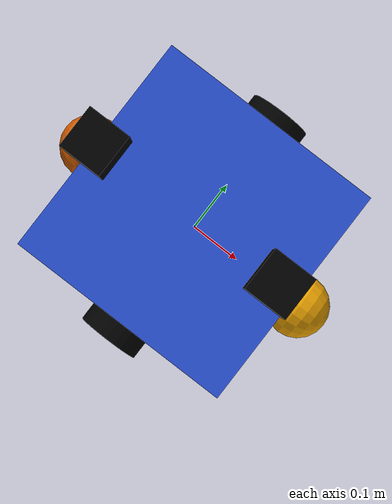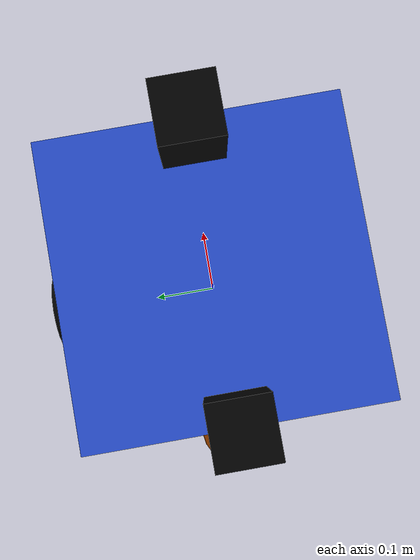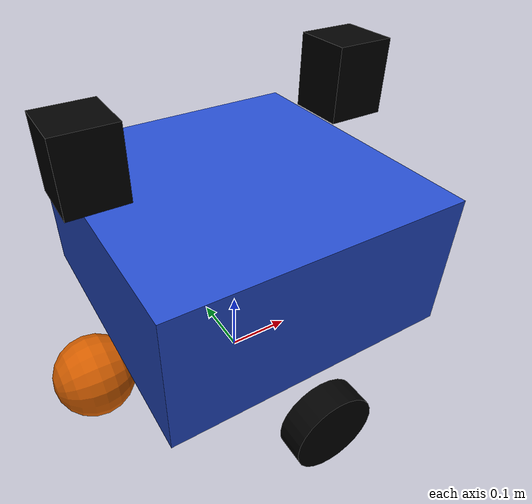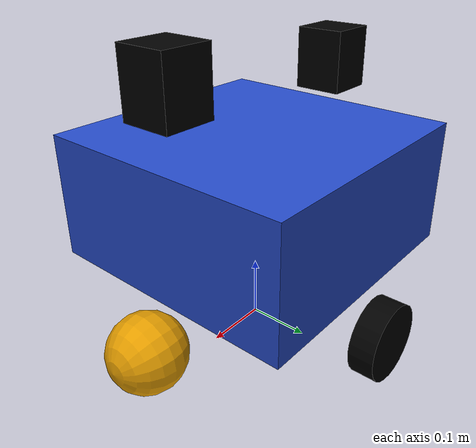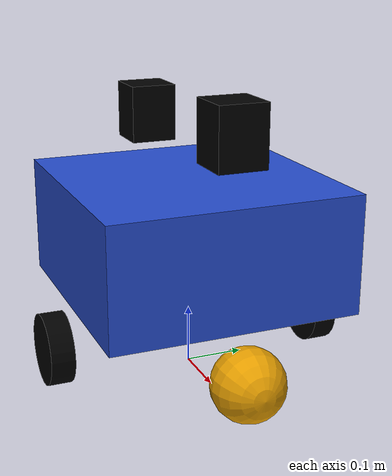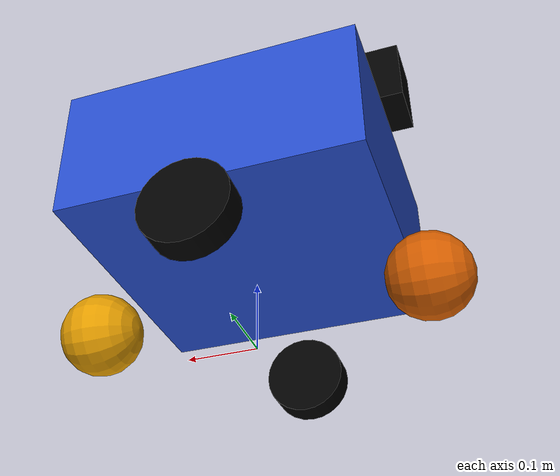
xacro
<?xml version="1.0"?>
<robot name="justina_base" xmlns:xacro="http://www.ros.org/wiki/xacro">
  <xacro:include filename="$(find justina_description)/urdf/justina_base.gazebo"/>

  <xacro:property name="base_width" value="0.42"/>
  <xacro:property name="base_depth" value="0.42"/>
  <xacro:property name="base_height" value="0.2"/>
  <xacro:property name="base_mass" value="30.0"/>
  <xacro:property name="wheel_radius" value="0.06"/>
  <xacro:property name="wheel_width" value="0.04"/>
  <xacro:property name="wheel_mass" value="30.0"/>
  <xacro:property name="PI_2" value="1.570796327"/>
  <xacro:property name="PI" value="3.14159265359"/>

  <!-- BASE LINKS AND JOINTS -->
  <link name="base_link">
    <visual>
      <origin xyz="0 0 0.235" rpy="0 0 0"/>
      <geometry> <box size="${base_width} ${base_depth} ${base_height}"/></geometry>
      <material name="blue"/>
    </visual>
    <collision>
      <origin xyz="0 0 0.235" rpy="0 0 0"/>
      <geometry> <box size="${base_width} ${base_depth} ${base_height}"/></geometry>
    </collision>
    <inertial>
      <origin xyz="0 0 0.235" rpy="0 0 0"/>
      <mass value="50.00"/>
      <xacro:box_inertia m="${base_mass}" x="${base_depth}" y="${base_width}" z="${base_height}"/>
    </inertial>
  </link>

  <joint name="wheel_left_connect" type="continuous">
    <origin xyz="0 0.24 0.065" rpy="-${PI_2} 0 0"/>
    <parent link="base_link"/>
    <child link="wheel_left"/>
    <axis xyz="0.0 0 1.0"/>
    <limit effort="11.067" velocity="20.8"/>
    <dynamics damping="1.0"/>
  </joint>

  <link name="wheel_left">
    <visual>
      <origin xyz="0 0 0" rpy="0 0 0"/>
      <geometry><cylinder length="${wheel_width}" radius="${wheel_radius}"/></geometry>
      <material name="gray"><color rgba="0 0 0 1" /></material>
    </visual>
    <collision>
      <origin xyz="0 0 0" rpy="0 0 0"/>
      <geometry><cylinder length="${wheel_width}" radius="${wheel_radius}"/></geometry>
    </collision>
    <inertial>
      <origin xyz="0 0 0"/>
      <mass value="0.2"/>
      <xacro:cylinder_inertia m="${wheel_mass}" r="${wheel_radius}" h="${wheel_width}"/>
    </inertial>
  </link>

  <joint name="wheel_right_connect" type="continuous">
    <origin xyz="0 -0.24 0.065" rpy="-1.5708 0 0"/>
    <parent link="base_link"/>
    <child link="wheel_right"/>
    <axis xyz="0.0 0 1.0"/>
    <limit effort="11.067" velocity="20.8"/>
    <dynamics damping="1.0"/>
  </joint>

  <link name="wheel_right">
    <visual>
      <origin xyz="0 0 0" rpy="0 0 0"/>
      <geometry><cylinder length="${wheel_width}" radius="${wheel_radius}"/></geometry>
      <material name="black"><color rgba="0 0 0 1" /></material>
    </visual>
    <collision>
      <origin xyz="0 0 0" rpy="0 0 0"/>
      <geometry><cylinder length="${wheel_width}" radius="${wheel_radius}"/></geometry>
    </collision>
    <inertial>
      <origin xyz="0 0 0" rpy="0 0 0"/>
      <mass value="0.2"/>
      <xacro:cylinder_inertia m="${wheel_mass}" r="${wheel_radius}" h="${wheel_width}"/>
    </inertial>
  </link>

  <joint name="wheel_back_connect_x" type="continuous">
    <origin xyz="-0.24 0 0.065" rpy="-1.5708 0 -1.5708"/>
    <parent link="base_link"/>
    <child link="wheel_back_x"/>
    <axis xyz="1 0 0"/>
    <limit effort="1.0" velocity="3.0"/>
    <dynamics damping="1.0"/>
  </joint>

  <link name="wheel_back_x">
    <inertial>
      <origin xyz="0 0 0" rpy="0 0 0"/>
      <mass value="0.2"/>
      <inertia ixx="0.015" ixy="0" ixz="0" iyy="0.015" iyz="0" izz="0.015"/>
    </inertial>
  </link>

  <joint name="wheel_back_connect_y" type="continuous">
    <axis xyz="0 1 0"/>
    <limit effort="8.85" velocity="10.0"/>
    <parent link="wheel_back_x"/>
    <child link="wheel_back_y"/>
  </joint>
  <link name="wheel_back_y">
    <inertial>
      <mass value="0.2"/>
      <origin xyz="0 0 0"/>
      <inertia ixx="0.015" ixy="0" ixz="0" iyy="0.015" iyz="0" izz="0.015"/>
    </inertial>
  </link>

  <joint name="wheel_back_connect_z" type="continuous">
    <axis xyz="0.0 0.0 1.0"/>
    <limit effort="8.85" velocity="10.0"/>
    <parent link="wheel_back_y"/>
    <child link="wheel_back_z"/>
  </joint>

  <link name="wheel_back_z">
    <visual>
      <geometry><sphere radius="0.06"/></geometry>
      <material name="wheel"/>
    </visual>
    <collision>
      <geometry><sphere radius="0.06"/></geometry>
    </collision>
    <inertial>
      <mass value="0.2"/>
      <origin xyz="0 0 0"/>
      <inertia ixx="0.015" ixy="0" ixz="0" iyy="0.015" iyz="0" izz="0.015"/>
    </inertial>
  </link>

  <joint name="wheel_front_connect_x" type="continuous">
    <origin xyz="0.24 0 0.065" rpy="-1.5708 0 -1.5708"/>
    <parent link="base_link"/>
    <child link="wheel_front_x"/>
    <axis xyz="1 0 0"/>
    <limit effort="1.0" velocity="3.0"/>
    <dynamics damping="1.0"/>
  </joint>

  <link name="wheel_front_x">
    <inertial>
      <mass value="0.2"/>
      <origin xyz="0 0 0"/>
      <inertia ixx="0.015" ixy="0" ixz="0" iyy="0.015" iyz="0" izz="0.015"/>
    </inertial>
  </link>

  <joint name="wheel_front_connect_y" type="continuous">
    <axis xyz="0.0 1.0 0.0"/>
    <limit effort="8.85" velocity="10.0"/>
    <parent link="wheel_front_x"/>
    <child link="wheel_front_y"/>
  </joint>

  <link name="wheel_front_y">
    <inertial>
      <mass value="0.2"/>
      <origin xyz="0 0 0"/>
      <inertia ixx="0.015" ixy="0" ixz="0" iyy="0.015" iyz="0" izz="0.015"/>
    </inertial>
  </link>

  <joint name="wheel_front_connect_z" type="continuous">
    <axis xyz="0.0 0.0 1.0"/>
    <limit effort="8.85" velocity="10.0"/>
    <parent link="wheel_front_y"/>
    <child link="wheel_front_z"/>
  </joint>

  <link name="wheel_front_z">
    <visual>
      <geometry><sphere radius="0.06"/></geometry>
      <material name="wheel"/>
    </visual>
    <collision>
      <geometry><sphere radius="0.06"/></geometry>
    </collision>
    <inertial>
      <mass value="0.2"/>
      <origin xyz="0 0 0"/>
      <inertia ixx="0.015" ixy="0" ixz="0" iyy="0.015" iyz="0" izz="0.015"/>
    </inertial>
  </link>

  <!-- LASER LINK AND JOINTS-->
  <link name="laser_link">
    <visual>
      <origin xyz="0 0 0" rpy="0 0 0"/>
      <geometry> <box size="0.08 0.08 0.1"/></geometry>
      <material name="black"/>
    </visual>
    <collision>
      <origin xyz="0 0 0" rpy="0 0 0"/>
      <geometry> <box size="0.08 0.08 0.1"/></geometry>
    </collision>
    <inertial>
      <origin xyz="0 0 0" rpy="0 0 0"/>
      <mass value="0.1"/>
      <xacro:box_inertia m="${0.05}" x="${0.08}" y="${0.08}" z="${0.1}"/>
    </inertial>
  </link>

  <link name="laser_link_rear">
    <visual>
      <origin xyz="0 0 0" rpy="0 0 0"/>
      <geometry> <box size="0.08 0.08 0.1"/></geometry>
      <material name="black"/>
    </visual>
    <collision>
      <origin xyz="0 0 0" rpy="0 0 0"/>
      <geometry> <box size="0.08 0.08 0.1"/></geometry>
    </collision>
    <inertial>
      <origin xyz="0 0 0" rpy="0 0 0"/>
      <mass value="0.1"/>
      <xacro:box_inertia m="${0.05}" x="${0.08}" y="${0.08}" z="${0.1}"/>
    </inertial>
  </link>

  <joint name="laser_connect" type="fixed">
    <origin xyz="0.17 0 0.44" rpy="0 0 0"/>
    <parent link="base_link"/>
    <child link="laser_link"/>
  </joint>
  <joint name="rear_laser_connect" type="fixed">
    <origin xyz="-0.2 0 0.41" rpy="0 0 ${PI}"/>
    <parent link="base_link"/>
    <child link="laser_link_rear"/>
  </joint>
</robot>
